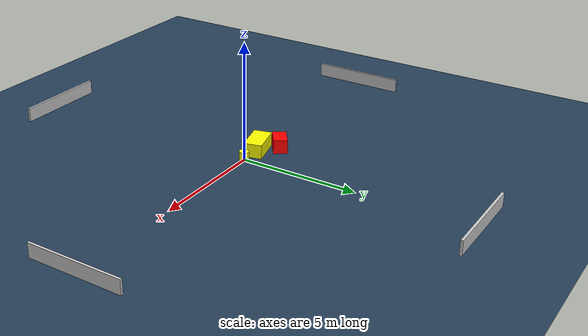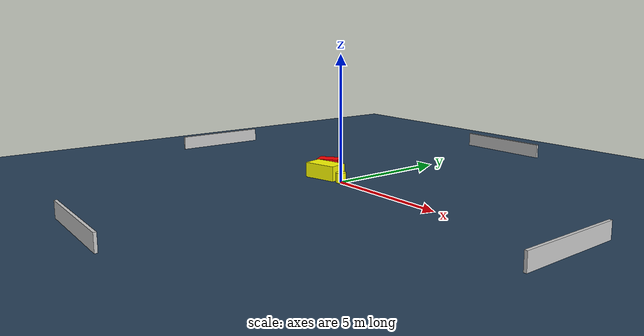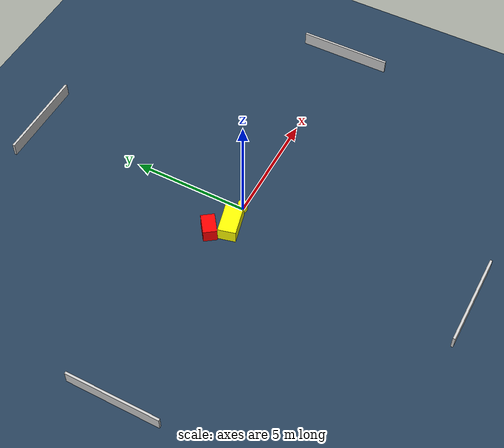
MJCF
<?xml version="1.0" ?>
<mujoco model="generated_environment">
  <option timestep="0.01" integrator="RK4" cone="elliptic"/>
  <default>
    <geom density="1"/>
  </default>
  <asset>
    <texture builtin="gradient" height="3072" name="skybox" rgb1="0.3 0.5 0.7" rgb2="0 0 0" type="skybox" width="512"/>
    <texture builtin="checker" height="300" name="groundplane" rgb1="0.2 0.3 0.4" rgb2="0.1 0.2 0.3" type="2d" width="300"/>
    <material name="groundplane" reflectance="0.2" texrepeat="5 5" texture="groundplane"/>
  </asset>
  <worldbody>
    <light dir="0 0 -1" directional="true" pos="0 0 1.5"/>
    <geom condim="3" friction="0.5 0.005 0.001" material="groundplane" name="floor" pos="0 0 0" size="0 0 0.05" type="plane"/>
    <body name="walls">
      <geom name="wall_1" condim="4" pos="-10.0 0.0 0.3" rgba="0.800000011920929 0.800000011920929 0.800000011920929 1.0" size="0.05 2.0 0.3" type="box"/>
      <geom name="wall_2" condim="4" pos="10.0 0.0 0.3" rgba="0.800000011920929 0.800000011920929 0.800000011920929 1.0" size="0.05 2.0 0.3" type="box"/>
      <geom name="wall_3" condim="4" pos="0.0 -10.0 0.3" rgba="0.800000011920929 0.800000011920929 0.800000011920929 1.0" size="2.0 0.05 0.3" type="box"/>
      <geom name="wall_4" condim="4" pos="0.0 10.0 0.3" rgba="0.800000011920929 0.800000011920929 0.800000011920929 1.0" size="2.0 0.05 0.3" type="box"/>
    </body>
    <body name="robot">
      <joint name="joint_x" type="slide" pos="0 0 0" axis="1 0 0"/>
      <joint name="joint_y" type="slide" pos="0 0 0" axis="0 1 0"/>
      <geom name="robot" type="cylinder" pos="0.0 0.0 0.2" size="0.2 0.2 0.0" mass="5.0" friction="1.0 0.005 0.0001" condim="4" rgba="1.0 1.0 0.0 1.0"/>
    </body>
    <body name="obstacle_1_movable">
      <geom name="obstacle_1_movable" condim="4" pos="-1.0229681788764458 0.002267275777109738 0.3" euler="0 0 103.93155884785965" friction="0.0 0.005 0.001" rgba="1.0 1.0 0.0 1.0" size="0.38043798719940775 0.6860066849657387 0.3" type="box" mass="0.1"/>
      <joint type="free"/>
    </body>
    <body name="obstacle_2_static">
      <geom name="obstacle_2_static" condim="4" pos="-1.6583762209425728 0.664528353142069 0.3" euler="0 0 35.964974532472276" friction="0.0 0.005 0.001" rgba="1.0 0.0 0.0 1.0" size="0.4409659339071459 0.2920247902207007 0.3" type="box"/>
    </body>
  </worldbody>
  <actuator>
    <motor name="actuator_x" joint="joint_x" gear="1" ctrlrange="-1 1"/>
    <motor name="actuator_y" joint="joint_y" gear="1" ctrlrange="-1 1"/>
  </actuator>
</mujoco>
